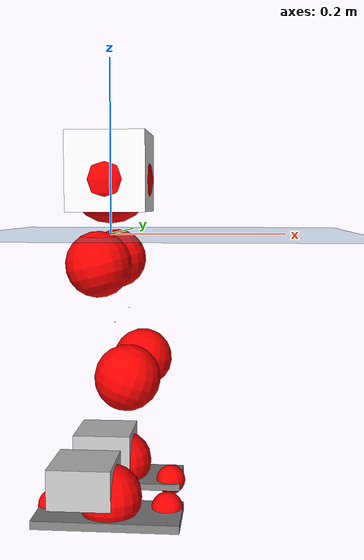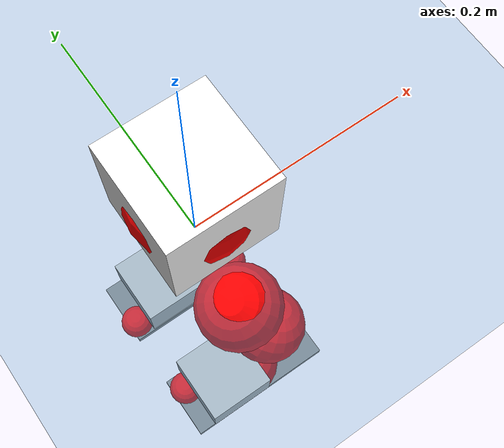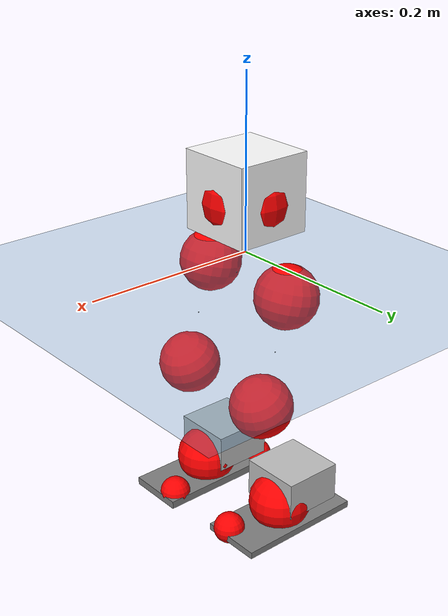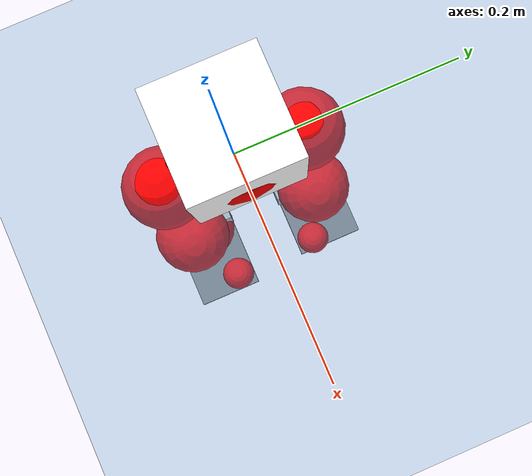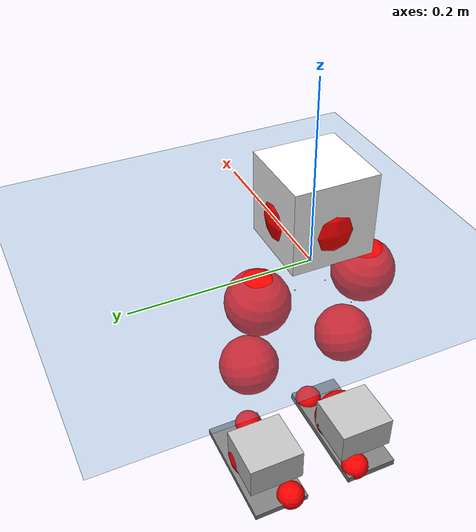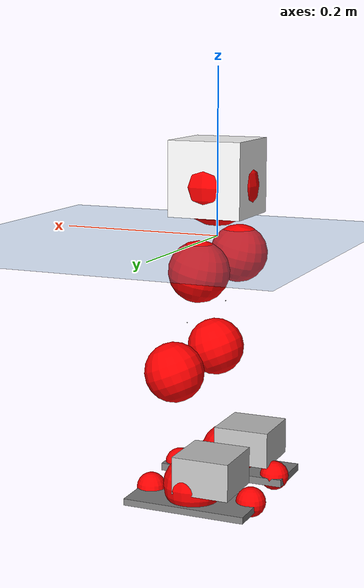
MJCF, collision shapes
<mujoco model="pi_12dof_release_v1">
  <compiler angle="radian" assetdir="assets" balanceinertia="true" inertiafromgeom="false"/>

  <option timestep="0.005" density="1.2" viscosity="2e-05"/>

  <size nkey="1"/>

  <visual>
    <quality shadowsize="8192"/>
    <map shadowclip="0.5"/>
  </visual>

  <default>
    <default class="/">
      <joint armature="0.01" damping="0.01" frictionloss="0.01"/>
      <geom contype="0" conaffinity="0" group="1" solref="-1000 -80"/>
      <site size="0.01 0.005 0.005" group="5"/>
      <general forcelimited="true" biastype="affine" gainprm="20" biasprm="0 -20 -0.5"/>
      <default class="foot">
        <geom size="0.0845 0.036 0.005" type="box" condim="6" group="4" priority="1" friction="0.9 0.2 0.2" solimp="0.015 1 0.005"/>
      </default>
      <default class="reward_collision_sphere">
        <geom group="5" rgba="1 0 0 1"/>
      </default>
    </default>
  </default>

  <asset>
    <texture type="skybox" colorspace="auto" name="//unnamed_texture_0" builtin="gradient" rgb1="0.95 0.95 0.95" rgb2="0.95 0.95 0.95" width="100" height="600"/>
    <texture type="2d" colorspace="auto" name="texplane" builtin="checker" rgb1="0.345 0.575 0.748" rgb2="0.345 0.575 0.748" markrgb="1 1 1" width="512" height="512"/>
    <material name="MatPlane" class="/" texture="texplane" texuniform="true" texrepeat="2 2" specular="0.9"/>
    <mesh name="baselink_1" class="/" file="baselink_1.STL"/>
    <mesh name="r_hip_pitch_link" class="/" file="r_hip_pitch_link.STL"/>
    <mesh name="r_hip_roll_link" class="/" file="r_hip_roll_link.STL"/>
    <mesh name="r_thigh_link" class="/" file="r_thigh_link.STL"/>
    <mesh name="r_calf_link" class="/" file="r_calf_link.STL"/>
    <mesh name="r_ankle_pitch_link" class="/" file="r_ankle_pitch_link.STL"/>
    <mesh name="r_ankle_roll_link" class="/" file="r_ankle_roll_link.STL"/>
    <mesh name="l_hip_pitch_link" class="/" file="l_hip_pitch_link.STL"/>
    <mesh name="l_hip_roll_link" class="/" file="l_hip_roll_link.STL"/>
    <mesh name="l_thigh_link" class="/" file="l_thigh_link.STL"/>
    <mesh name="l_calf_link" class="/" file="l_calf_link.STL"/>
    <mesh name="l_ankle_pitch_link" class="/" file="l_ankle_pitch_link.STL"/>
    <mesh name="l_ankle_roll_link" class="/" file="l_ankle_roll_link.STL"/>
  </asset>

  <worldbody>
    <geom name="floor" class="/" size="100 100 0.125" type="plane" group="0" material="MatPlane"/>
    <light name="toplight_shadow" class="/" pos="0 0 5" dir="0.0990148 0.0990148 -0.990148" type="directional" ambient="0.04 0.04 0.04" diffuse="0.55 0.55 0.55" specular="0.12 0.12 0.12"/>
    <light name="toplight_fill" class="/" pos="0 0 5" dir="0.0990148 0.0990148 -0.990148" type="directional" castshadow="false" ambient="0.04 0.04 0.04" diffuse="0.3 0.3 0.3" specular="0.08 0.08 0.08"/>
    <body name="trunk" pos="0.000182096 -0.0001216 -0.0015778" quat="1 -2.64543e-05 3.68506e-05 -3.04589e-05">
      <inertial pos="0.000103612 -0.0032554 0.0363139" quat="0.695659 0.006515 0.0116241 0.718249" mass="1.55644" diaginertia="0.00809504 0.00369033 0.00258415"/>
      <joint name="//unnamed_joint_0" type="free"/>
      <geom name="//unnamed_geom_1" class="/" type="mesh" density="0" rgba="1 1 1 1" mesh="baselink_1"/>
      <geom name="//unnamed_geom_2" class="/" size="0.0448704 0.0448704 0.0448704" pos="0 0 0.0722885" type="box" rgba="1 1 1 1"/>
      <geom name="//unnamed_geom_3" class="reward_collision_sphere" size="0.0493574" pos="0 0 0.0632524"/>
      <site name="imu" class="/" pos="-0.0133536 0.00225498 0.012476" size="0.00897408"/>
      <camera name="track" class="/" pos="0 -1.66316 0" quat="0.707107 0.707107 0 0" mode="trackcom"/>
      <camera name="ego_camera" class="/" pos="0.0717776 0 0.162649" quat="-0.5 -0.5 0.5 0.5"/>
      <body name="r_hip_pitch_link" pos="-0.00243617 -0.0177831 -0.0293066" quat="0.992212 -8.78303e-07 -0.124562 -0.000417728">
        <inertial pos="0.00355055 -0.0473267 -0.00028837" quat="-0.0232175 0.704962 -0.0295424 0.708249" mass="0.256987" diaginertia="8.37022e-05 3.87616e-05 4.91521e-05"/>
        <joint name="r_hip_pitch_joint" class="/" pos="0 0 0" axis="-0.0103143 -0.999946 0.00090396" stiffness="0.0108712" range="-1.75161 1.19681" armature="0.00903896" damping="0" frictionloss="0.00932037"/>
        <geom name="//unnamed_geom_4" class="/" type="mesh" density="0" rgba="0.75294 0.75294 0.75294 1" mesh="r_hip_pitch_link"/>
        <geom name="//unnamed_geom_5" class="/" size="0.000448704 0.000448704 0.000448704" type="box" rgba="0.75294 0.75294 0.75294 1"/>
        <body name="r_hip_roll_link" pos="-0.000788505 -0.0465281 0.000874736" quat="1 -9.55739e-05 -5.88529e-05 9.64832e-06">
          <inertial pos="-0.0011704 -8.51447e-05 -0.0529678" quat="0.70708 -0.0764693 -0.0782485 0.698619" mass="0.286032" diaginertia="0.000261113 0.000111221 7.86009e-05"/>
          <joint name="r_hip_roll_joint" class="/" pos="0 0 0" axis="-0.999922 -0.00138634 -0.0123972" stiffness="0.00265174" range="-0.171425 0.482884" armature="0.00912476" damping="0.00888529" frictionloss="0.00979119"/>
          <geom name="//unnamed_geom_6" class="/" type="mesh" density="0" rgba="0.75294 0.75294 0.75294 1" mesh="r_hip_roll_link"/>
          <geom name="//unnamed_geom_7" class="/" size="0.000448704 0.000448704 0.000448704" type="box" rgba="0.75294 0.75294 0.75294 1"/>
          <geom name="//unnamed_geom_8" class="reward_collision_sphere" size="0.0358963"/>
          <body name="r_thigh_link" pos="0.00174417 -0.00147943 -0.0649181" quat="0.999999 0.000374195 0.000411686 -0.000895002">
            <inertial pos="0.000955611 0.000966159 -0.0418671" quat="0.737715 0.675092 -0.00244241 -0.00468204" mass="0.0803241" diaginertia="9.97009e-05 3.74326e-05 3.5088e-05"/>
            <joint name="r_thigh_joint" class="/" pos="0 0 0" axis="0.000528265 0.00939488 -0.999956" range="-0.315677 0.579159" armature="0.00864474" damping="0.000621971" frictionloss="0.00866433"/>
            <geom name="//unnamed_geom_9" class="/" type="mesh" density="0" rgba="0.75294 0.75294 0.75294 1" mesh="r_thigh_link"/>
            <geom name="//unnamed_geom_10" class="/" size="0.000448704 0.000448704 0.000448704" type="box" rgba="0.75294 0.75294 0.75294 1"/>
            <body name="r_calf_link" pos="-0.00191511 -0.00132028 -0.0616929" quat="0.94755 -0.000155193 0.319608 -4.37044e-05">
              <inertial pos="0.00207297 -0.00100972 -0.0627301" quat="0.999984 -0.00314528 0.00011331 0.00479301" mass="0.604129" diaginertia="0.00287194 0.00142375 0.000106793"/>
              <joint name="r_calf_joint" class="/" pos="0 0 0" axis="-0.000132115 -0.999995 -0.00301619" range="-1.65765 0.660191" armature="0.00836467" damping="0.0147243" frictionloss="0.00888507"/>
              <geom name="//unnamed_geom_11" class="/" type="mesh" density="0" rgba="0.75294 0.75294 0.75294 1" mesh="r_calf_link"/>
              <geom name="//unnamed_geom_12" class="/" size="0.000448704 0.000448704 0.000448704" type="box" rgba="0.75294 0.75294 0.75294 1"/>
              <geom name="//unnamed_geom_13" class="reward_collision_sphere" size="0.0358963"/>
              <body name="r_ankle_pitch_link" pos="0.000300458 0.00296581 -0.127096" quat="0.980079 -7.49763e-05 -0.198606 -4.85952e-05">
                <inertial pos="0.0047777 0.00229858 -0.000447905" quat="0.00830897 0.714377 -0.000727735 0.699712" mass="0.119894" diaginertia="0.00024129 8.7292e-05 7.04005e-05"/>
                <joint name="r_ankle_pitch_joint" class="/" pos="0 0 0" axis="0.00628512 -0.999978 0.00222528" range="-1.27495 0.481132" armature="0.0093693" damping="0" frictionloss="0.00894136"/>
                <geom name="//unnamed_geom_14" class="/" type="mesh" density="0" rgba="0.75294 0.75294 0.75294 1" mesh="r_ankle_pitch_link"/>
                <geom name="//unnamed_geom_15" class="/" size="0.0349989 0.0358963 0.0224352" type="box" rgba="0.75294 0.75294 0.75294 1"/>
                <body name="r_ankle_roll_link" pos="0.0761547 0.000518759 0.000100683" quat="1 6.98429e-09 -0.000111486 2.25012e-05">
                  <inertial pos="-0.0226893 -0.000186706 -0.0105277" quat="0.558995 0.427683 0.435344 0.561327" mass="0.376609" diaginertia="0.000875707 0.000397921 0.000171293"/>
                  <joint name="r_ankle_roll_joint" class="/" pos="0 0 0" axis="-0.999996 -0.00263765 -0.00112773" stiffness="0.00168961" range="-0.18074 0.142794" armature="0.00857692" damping="0" frictionloss="0.0100566"/>
                  <geom name="//unnamed_geom_16" class="/" type="mesh" density="0" rgba="0.75294 0.75294 0.75294 1" mesh="r_ankle_roll_link"/>
                  <geom name="//unnamed_geom_17" class="/" type="mesh" rgba="0.75294 0.75294 0.75294 1" mesh="r_ankle_roll_link"/>
                  <geom name="right_foot" class="foot" size="0.0807197 0.0341811 0.00462547" pos="-0.0488088 0 -0.0397587"/>
                  <geom name="//unnamed_geom_19" class="reward_collision_sphere" size="0.0358963" pos="-0.0478518 0 -0.0180721"/>
                  <geom name="//unnamed_geom_20" class="reward_collision_sphere" size="0.0179482" pos="0.0143555 0.0166316 -0.0361443"/>
                  <geom name="//unnamed_geom_21" class="reward_collision_sphere" size="0.0179482" pos="-0.114844 0.0166316 -0.0361443"/>
                  <site name="right_foot" class="foot" pos="-0.0488088 0 -0.0397587" size="0.00897408"/>
                </body>
              </body>
            </body>
          </body>
        </body>
      </body>
      <body name="l_hip_pitch_link" pos="-0.00249173 0.0189601 -0.030354" quat="0.992213 0.000256163 -0.124556 0.00017027">
        <inertial pos="0.000925699 0.0471395 0.000388432" quat="-0.0397452 0.70783 0.0332364 0.70448" mass="0.27975" diaginertia="0.000100951 4.1913e-05 5.70379e-05"/>
        <joint name="l_hip_pitch_joint" class="/" pos="0 0 0" axis="-0.00745236 0.999972 -0.000222204" range="-1.29814 1.72941" armature="0.0101592" damping="0.000799875" frictionloss="0.00935243"/>
        <geom name="//unnamed_geom_22" class="/" type="mesh" density="0" rgba="0.75294 0.75294 0.75294 1" mesh="l_hip_pitch_link"/>
        <geom name="//unnamed_geom_23" class="/" size="0.000448704 0.000448704 0.000448704" type="box" rgba="0.75294 0.75294 0.75294 1"/>
        <body name="l_hip_roll_link" pos="-0.000559979 0.0441403 -0.000404387" quat="1 -2.32899e-05 4.21133e-05 -4.97892e-05">
          <inertial pos="-0.00114173 0.00202858 -0.0542678" quat="0.699177 -0.0752713 -0.0764922 0.706848" mass="0.281228" diaginertia="0.000267784 0.000109181 7.65797e-05"/>
          <joint name="l_hip_roll_joint" class="/" pos="0 0 0" axis="-0.999893 -0.00585024 -0.0134129" range="-0.4469 0.139013" armature="0.00871117" damping="0.00614315" frictionloss="0.00785554"/>
          <geom name="//unnamed_geom_24" class="/" type="mesh" density="0" rgba="0.75294 0.75294 0.75294 1" mesh="l_hip_roll_link"/>
          <geom name="//unnamed_geom_25" class="/" size="0.000448704 0.000448704 0.000448704" type="box" rgba="0.75294 0.75294 0.75294 1"/>
          <geom name="//unnamed_geom_26" class="reward_collision_sphere" size="0.0358963"/>
          <body name="l_thigh_link" pos="-0.000906762 -0.000596388 -0.0632434" quat="1 -3.37559e-05 -0.000219855 0.0001358">
            <inertial pos="0.000404424 -0.00177709 -0.0437689" quat="0.681507 0.731743 0.00256087 -0.00964404" mass="0.0810211" diaginertia="0.000100474 3.73702e-05 3.35853e-05"/>
            <joint name="l_thigh_joint" class="/" pos="0 0 0" axis="-0.00307848 0.002197 -0.999993" range="-0.62132 0.316889" armature="0.00910662" damping="0" frictionloss="0.00949594"/>
            <geom name="//unnamed_geom_27" class="/" type="mesh" density="0" rgba="0.75294 0.75294 0.75294 1" mesh="l_thigh_link"/>
            <geom name="//unnamed_geom_28" class="/" size="0.000448704 0.000448704 0.000448704" type="box" rgba="0.75294 0.75294 0.75294 1"/>
            <body name="l_calf_link" pos="0.0013907 -0.00199917 -0.0644721" quat="0.947531 0.00103633 0.319661 -5.09387e-05">
              <inertial pos="-0.00229994 0.00243042 -0.0611318" quat="0.999949 0.00776234 0.00175946 0.00621239" mass="0.585689" diaginertia="0.00280612 0.00138905 0.0001013"/>
              <joint name="l_calf_joint" class="/" pos="0 0 0" axis="-0.00170552 0.999997 -0.00156107" range="-0.663 1.60061" armature="0.00788758" damping="0.00736538" frictionloss="0.00784409"/>
              <geom name="//unnamed_geom_29" class="/" type="mesh" density="0" rgba="0.75294 0.75294 0.75294 1" mesh="l_calf_link"/>
              <geom name="//unnamed_geom_30" class="/" size="0.000448704 0.000448704 0.000448704" type="box" rgba="0.75294 0.75294 0.75294 1"/>
              <geom name="//unnamed_geom_31" class="reward_collision_sphere" size="0.0358963"/>
              <body name="l_ankle_pitch_link" pos="0.000560031 0.00122714 -0.124117" quat="0.980089 5.00899e-05 -0.198558 -0.000195407">
                <inertial pos="0.00649854 0.000371808 -0.000592758" quat="-0.00224046 0.707086 0.002335 0.70712" mass="0.118841" diaginertia="0.000231745 8.58507e-05 6.89051e-05"/>
                <joint name="l_ankle_pitch_joint" class="/" pos="0 0 0" axis="-0.0020296 0.999957 -0.00904092" range="-0.507103 1.29626" armature="0.00916607" damping="0" frictionloss="0.0101341"/>
                <geom name="//unnamed_geom_32" class="/" type="mesh" density="0" rgba="0.75294 0.75294 0.75294 1" mesh="l_ankle_pitch_link"/>
                <geom name="//unnamed_geom_33" class="/" size="0.0349989 0.0358963 0.0224352" type="box" rgba="0.75294 0.75294 0.75294 1"/>
                <body name="l_ankle_roll_link" pos="0.0693444 0.00262616 -0.000862631" quat="1 -0.000110108 3.05186e-05 4.15489e-05">
                  <inertial pos="-0.0232119 -0.000487112 -0.0126256" quat="0.558506 0.425709 0.428997 0.568158" mass="0.375491" diaginertia="0.000904522 0.000423482 0.000172516"/>
                  <joint name="l_ankle_roll_joint" class="/" pos="0 0 0" axis="-0.999999 -0.00128376 -0.00110468" range="-0.154216 0.150712" armature="0.00938983" damping="0.00762854" frictionloss="0.0077754"/>
                  <geom name="//unnamed_geom_34" class="/" type="mesh" density="0" rgba="0.75294 0.75294 0.75294 1" mesh="l_ankle_roll_link"/>
                  <geom name="//unnamed_geom_35" class="/" type="mesh" rgba="0.75294 0.75294 0.75294 1" mesh="l_ankle_roll_link"/>
                  <geom name="left_foot" class="foot" size="0.0756845 0.0359815 0.00400395" pos="-0.0488088 0 -0.0397587"/>
                  <geom name="//unnamed_geom_37" class="reward_collision_sphere" size="0.0358963" pos="-0.0478518 0 -0.0180721"/>
                  <geom name="//unnamed_geom_38" class="reward_collision_sphere" size="0.0179482" pos="0.0143555 -0.0166316 -0.0361443"/>
                  <geom name="//unnamed_geom_39" class="reward_collision_sphere" size="0.0179482" pos="-0.114844 -0.0166316 -0.0361443"/>
                  <site name="left_foot" class="foot" pos="-0.0488088 0 -0.0397587" size="0.00897408"/>
                </body>
              </body>
            </body>
          </body>
        </body>
      </body>
    </body>
  </worldbody>

  <contact>
    <pair class="/" geom1="floor" geom2="right_foot" name="//unnamed_contact_1"/>
    <pair class="/" geom1="floor" geom2="left_foot" name="//unnamed_contact_0"/>
  </contact>

  <actuator>
    <general name="r_hip_pitch_joint" class="/" joint="r_hip_pitch_joint" forcerange="-18.3719 18.3719" gainprm="18.1716" biasprm="0 -18.1716 -0.47826"/>
    <general name="r_hip_roll_joint" class="/" joint="r_hip_roll_joint" forcerange="-17.2356 17.2356" gainprm="18.1716" biasprm="0 -18.1716 -0.47826"/>
    <general name="r_thigh_joint" class="/" joint="r_thigh_joint" forcerange="-20.2505 20.2505" gainprm="18.1716" biasprm="0 -18.1716 -0.47826"/>
    <general name="r_calf_joint" class="/" joint="r_calf_joint" forcerange="-18.5762 18.5762" gainprm="18.1716" biasprm="0 -18.1716 -0.47826"/>
    <general name="r_ankle_pitch_joint" class="/" joint="r_ankle_pitch_joint" forcerange="-17.23 17.23" gainprm="18.1716" biasprm="0 -18.1716 -0.47826"/>
    <general name="r_ankle_roll_joint" class="/" joint="r_ankle_roll_joint" forcerange="-18.705 18.705" gainprm="18.1716" biasprm="0 -18.1716 -0.47826"/>
    <general name="l_hip_pitch_joint" class="/" joint="l_hip_pitch_joint" forcerange="-19.2256 19.2256" gainprm="18.1716" biasprm="0 -18.1716 -0.47826"/>
    <general name="l_hip_roll_joint" class="/" joint="l_hip_roll_joint" forcerange="-18.3561 18.3561" gainprm="18.1716" biasprm="0 -18.1716 -0.47826"/>
    <general name="l_thigh_joint" class="/" joint="l_thigh_joint" forcerange="-19.5766 19.5766" gainprm="18.1716" biasprm="0 -18.1716 -0.47826"/>
    <general name="l_calf_joint" class="/" joint="l_calf_joint" forcerange="-18.0769 18.0769" gainprm="18.1716" biasprm="0 -18.1716 -0.47826"/>
    <general name="l_ankle_pitch_joint" class="/" joint="l_ankle_pitch_joint" forcerange="-18.7753 18.7753" gainprm="18.1716" biasprm="0 -18.1716 -0.47826"/>
    <general name="l_ankle_roll_joint" class="/" joint="l_ankle_roll_joint" forcerange="-17.0988 17.0988" gainprm="18.1716" biasprm="0 -18.1716 -0.47826"/>
  </actuator>

  <sensor>
    <gyro site="imu" name="imu_angular_velocity"/>
    <velocimeter site="imu" name="imu_linear_velocity"/>
    <framelinvel objtype="site" objname="left_foot" name="left_foot_global_linear_velocity"/>
    <framelinvel objtype="site" objname="right_foot" name="right_foot_global_linear_velocity"/>
  </sensor>

  <keyframe>
    <key name="home" qpos="0 0 0.291 1 0 0 0 0.4 0 0 -0.8 0.4 0 -0.4 0 0 0.8 -0.4 0"/>
  </keyframe>
</mujoco>
